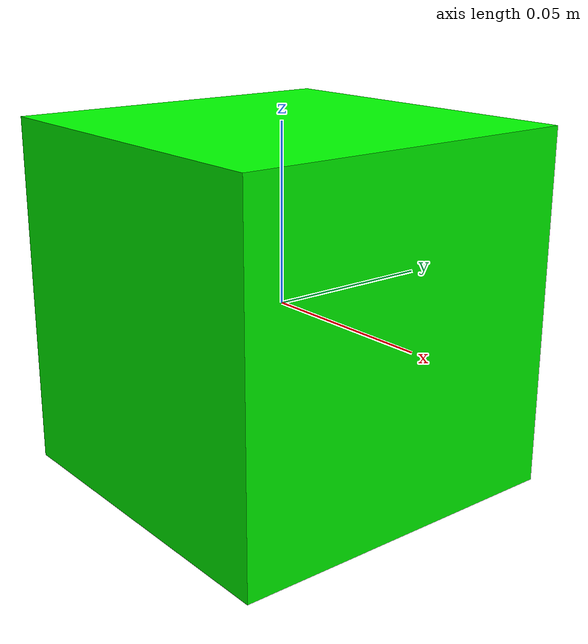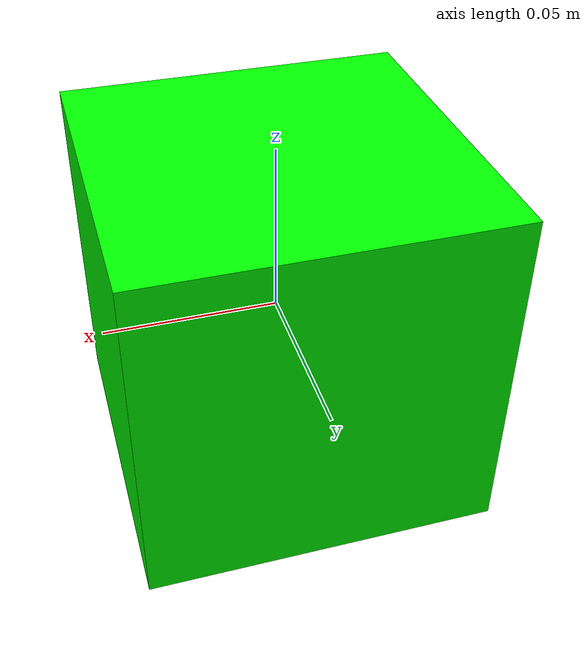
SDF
<?xml version="1.0" ?>
<sdf version="1.6">
  <model name="layer_model">
    <static>true</static>
      <link name="debug_link">
        <inertial>
          <mass>0.1</mass>
          <inertia>
            <ixx>0.001</ixx>
            <iyy>0.001</iyy>
            <izz>0.001</izz>
            <ixy>0.0</ixy>
            <ixz>0.0</ixz>
            <iyz>0.0</iyz>
          </inertia>
        </inertial>

        <!-- Visual Debug Box -->
        <visual name="debug_box_visual">
          <geometry>
            <box>
              <size>0.1 0.1 0.1</size> <!-- Dimensions of the box -->
            </box>
          </geometry>
          <material>
            <ambient>0 1 0 1</ambient> <!-- Green color -->
          </material>
          <pose>0 0 0 0 0 0</pose> <!-- Centered pose -->
        </visual>

        <!-- Collision Debug Box -->
        <collision name="debug_box_collision">
          <geometry>
            <box>
              <size>0.1 0.1 0.1</size>
            </box>
          </geometry>
          <pose>0 0 0 0 0 0</pose>
        </collision>
      </link>

      <link name="link">
        <inertial>
          <mass>1.0</mass>
          <inertia>
            <ixx>0.01</ixx>
            <iyy>0.01</iyy>
            <izz>0.01</izz>
            <ixy>0.0</ixy>
            <ixz>0.0</ixz>
            <iyz>0.0</iyz>
          </inertia>
        </inertial>
        <visual name="visual">
          <geometry>
            <mesh>
              <uri>/home/rosmatch/catkin_ws/src/match_additive_manufacturing/component/meshes/Layer1ShellTonicWallRounded500inWorkspace.stl</uri>
              <scale>0.001 0.001 0.001</scale>
            </mesh>
          </geometry>
        </visual>
        <collision name="collision">
          <geometry>
            <mesh>
              <uri>/home/rosmatch/catkin_ws/src/match_additive_manufacturing/component/meshes/Layer1ShellTonicWallRounded500inWorkspace.stl</uri>
              <scale>0.001 0.001 0.001</scale>
            </mesh>
          </geometry>
        </collision>
      </link>
  </model>
</sdf>
